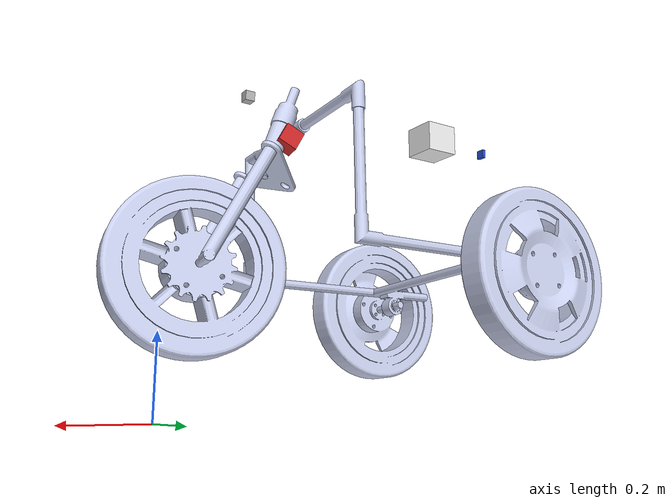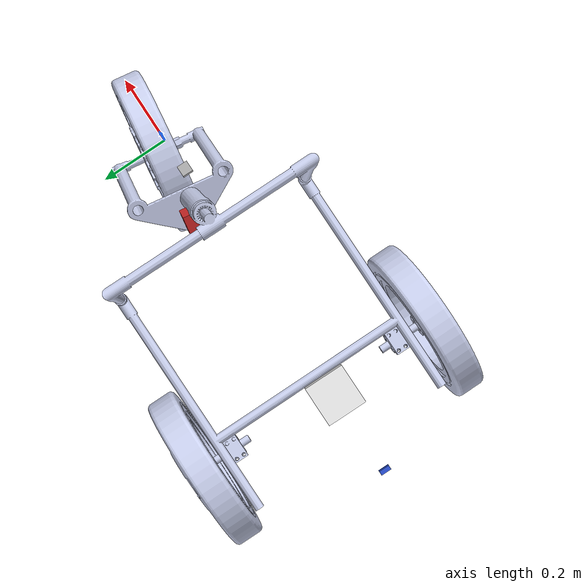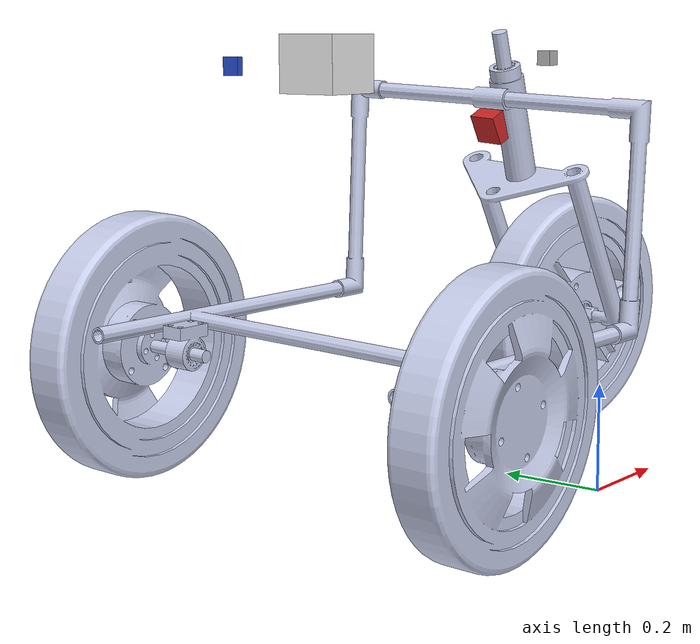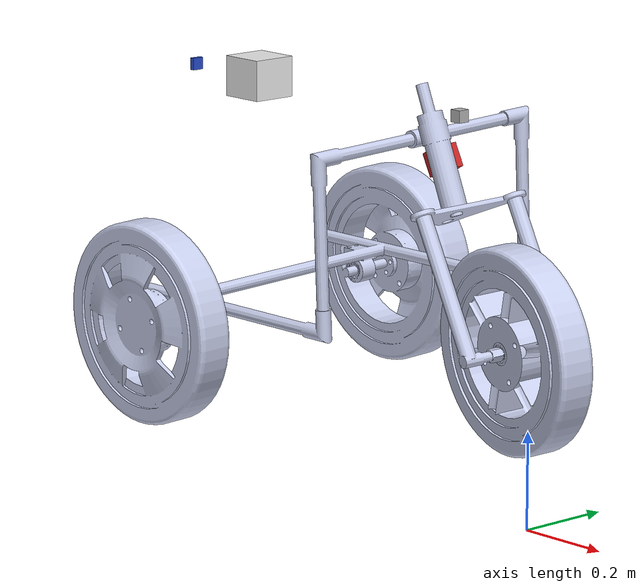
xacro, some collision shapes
<?xml version="1.0"?>

<robot
  name="chasisss"
  xmlns:sensor="http://playerstage.sourceforge.net/gazebo/xmlschema/#sensor"
xmlns:controller="http://playerstage.sourceforge.net/gazebo/xmlschema/#controller"
xmlns:interface="http://playerstage.sourceforge.net/gazebo/xmlschema/#interface"
xmlns:xacro="http://ros.org/wiki/xacro"
>

<xacro:include filename="$(find eklavya5_description)/sensors/imu.urdf.xacro" />
<xacro:include filename="$(find eklavya5_description)/sensors/gps.urdf.xacro" />
 <property name="M_PI" value="3.1415926535897931" />

  <link
    name = "base_link">
  </link>
  <link
    name="Chassis">
    <inertial>
      <origin
        xyz="0.51815 0.2035 0.46592"
        rpy="0 0 0" />
      <mass
        value="1.60779" />
      <inertia
        ixx="0.100657"
        ixy="0.000429"
        ixz="-0.012951"
        iyy="0.062637"
        iyz="-0.000032"
        izz="0.126211" />
    </inertial>
    <visual>
      <origin
        xyz="0 0 0"
        rpy="0 0 0" />
      <geometry>
        <mesh
          filename="package://eklavya5_description/meshes/Chassis.STL" />
      </geometry>
      <material
        name="">
        <color
          rgba="0.79216 0.81961 0.93333 1" />
      </material>
    </visual>
    <collision>
      <origin
        xyz="0 0 0"
        rpy="0 0 0" />
      <geometry>
        <mesh
          filename="package://eklavya5_description/meshes/Chassis.STL" />
      </geometry>
    </collision>
  </link>
  <joint
    name="base_link-Chassis"
    type="fixed">
    <origin
      xyz="0 0 0"
      rpy="0 -1.25 -1.57" />
    <parent
      link="base_link" />
    <child
      link="Chassis" />
  </joint>
  <link
    name="Steering">
    <inertial>
      <origin
        xyz="0.074275 -0.0014324 0.24555"
        rpy="0 0 0" />
      <mass
        value="5.15679" />
      <inertia
        ixx="0.030405"
        ixy="0.00"
        ixz="-0.014212"
        iyy="0.037062"
        iyz="0.00"
        izz="0.015136" />
    </inertial>
    <visual>
      <origin
        xyz="0 0 0"
        rpy="0 0 0" />
      <geometry>
        <mesh
          filename="package://eklavya5_description/meshes/Steering.STL" />
      </geometry>
      <material
        name="">
        <color
          rgba="0.79216 0.81961 0.93333 1" />
      </material>
    </visual>
    <collision>
      <origin
        xyz="0 0 0"
        rpy="0 0 0" />
      <geometry>
        <mesh
          filename="package://eklavya5_description/meshes/Steering.STL" />
      </geometry>
    </collision>
  </link>
  <joint
    name="Chassis-Steering"
    type="revolute">
    <limit lower="${-M_PI/2.0}" upper="${M_PI/2.0}" effort="50000" velocity="10000"/>
    <origin
      xyz="0.20345 -0.10209 0.11102"
      rpy="1.2673 0 1.0548" />
    <parent
      link="Chassis" />
    <child
      link="Steering" />
    <axis
      xyz="0 0 -1" />

  </joint>
  <link
    name="Front Wheel">
    <inertial>
      <origin
        xyz="8.9869E-09 -1.0254E-08 -0.037497"
        rpy="0 0 0" />
      <mass
        value="7.11231" />
      <inertia
        ixx="0.084989"
        ixy="0.00"
        ixz="0.00"
        iyy="0.163706"
        iyz="0.00"
        izz="0.084989" />
    </inertial>
    <visual>
      <origin
        xyz="0 0 0"
        rpy="0 0 0" />
      <geometry>
        <mesh
          filename="package://eklavya5_description/meshes/Front Wheel.STL" />
      </geometry>
      <material
        name="">
        <color
          rgba="0.79216 0.81961 0.93333 1" />
      </material>
    </visual>
    <collision>
      <origin
        xyz="0 0 0"
        rpy="0 0 0" />
      <geometry>
        <mesh
          filename="package://eklavya5_description/meshes/Front Wheel.STL" />
      </geometry>
      <surface>
        <friction>
          <ode>
            <mu>0.5</mu>
            <mu2>0.25</mu2>
          </ode>
        </friction>
        <contact>
          <ode/>
        </contact>
     </surface>
    </collision>
  </link>
  <joint
    name="Steerring Wheel"
    type="continuous">
    <origin
      xyz="0.086603 0.038 0.087837"
      rpy="1.5708 0 3.1416" />
    <parent
      link="Steering" />
    <child
      link="Front Wheel" />
    <axis
      xyz="0 0 -1" />

  </joint>
  <link
    name="Left Wheel">
    <inertial>
      <origin
        xyz="4.0523E-15 0.057678 2.2204E-16"
        rpy="0 0 0" />
      <mass
        value="6.50284" />
      <inertia
        ixx="0.084208"
        ixy="0.00"
        ixz="0.00"
        iyy="0.161025"
        iyz="0.00"
        izz="0.084208" />
    </inertial>
    <visual>
      <origin
        xyz="0 0 0"
        rpy="0 0 0" />
      <geometry>
        <mesh
          filename="package://eklavya5_description/meshes/Left Wheel.STL" />
      </geometry>
      <material
        name="">
        <color
          rgba="0.79216 0.81961 0.93333 1" />
      </material>
    </visual>
    <collision>
      <origin
        xyz="0 0 0"
        rpy="0 0 0" />
      <geometry>
        <mesh
          filename="package://eklavya5_description/meshes/Left Wheel.STL" />
      </geometry>
      <surface>
        <friction>
          <ode>
            <mu>0.5</mu>
            <mu2>0.25</mu2>
          </ode>
        </friction>
        <contact>
          <ode/>
        </contact>
     </surface>

    </collision>
  </link>
  <joint
    name="LW-Chassis"
    type="continuous">
    <origin
      xyz="0.23345 -0.80043 0.41447"
      rpy="1.4533 -0.25456 0.43831" />
    <parent
      link="Chassis" />
    <child
      link="Left Wheel" />
    <axis
      xyz="0 -1 0" />

  </joint>
  <link
    name="Right Wheel">
    <inertial>
      <origin
        xyz="-1.0103E-14 1.8874E-15 0.073368"
        rpy="0 0 0" />
      <mass
        value="6.50284" />
      <inertia
        ixx="0.084208"
        ixy="0.00"
        ixz="0.00"
        iyy="0.161025"
        iyz="0.00"
        izz="0.084208" />
    </inertial>
    <visual>
      <origin
        xyz="0 0 0"
        rpy="0 0 0" />
      <geometry>
        <mesh
          filename="package://eklavya5_description/meshes/Right Wheel.STL" />
      </geometry>
      <material
        name="">
        <color
          rgba="0.79216 0.81961 0.93333 1" />
      </material>
    </visual>
    <collision>
      <origin
        xyz="0 0 0"
        rpy="0 0 0" />
      <geometry>
        <mesh
          filename="package://eklavya5_description/meshes/Right Wheel.STL" />
      </geometry>
      <surface>
        <friction>
          <ode>
            <mu>0.5</mu>
            <mu2>0.25</mu2>
          </ode>
        </friction>
        <contact>
          <ode/>
        </contact>
     </surface>
    </collision>
  </link>
  <joint
    name="RW-Chassis"
    type="continuous">
    <origin
      xyz="0.384 -0.80043 -0.10941"
      rpy="-3.0808 -0.27332 -0.22183" />
    <parent
      link="Chassis" />
    <child
      link="Right Wheel" />
    <axis
      xyz="0 0 1" />

  </joint>

  <joint name="camera_joint" type="fixed">
    <axis xyz="0 1 0" />
    <origin xyz="0.05 0 0.5" rpy="0 0 0"/>
    <parent link="Steering"/>
    <child link="camera_link"/>
  </joint>

  <!-- Camera -->
  <link name="camera_link">
    <collision>
      <origin xyz="0 0 0" rpy="0 0 0"/>
      <geometry>
    <box size="0.05 0.05 0.05"/>
      </geometry>
    </collision>

    <visual>
      <origin xyz="0 0 0" rpy="0 0 0"/>
      <geometry>
<box size="0.05 0.05 0.05"/>
      </geometry>
      <material name="red"/>
    </visual>

    <inertial>
      <mass value="1e-5" />
      <origin xyz="0 0 0" rpy="0 0 0"/>
      <inertia ixx="1e-6" ixy="0" ixz="0" iyy="1e-6" iyz="0" izz="1e-6" />
    </inertial>
  </link>

  <gazebo reference="camera_link">
    <sensor type="camera" name="camera1">
      <update_rate>24.0</update_rate>
      <camera name="head">
        <horizontal_fov>1.23</horizontal_fov>
        <image>
          <width>640</width>
          <height>480</height>
          <format>R8G8B8</format>
        </image>
        <clip>
          <near>0.02</near>
          <far>300</far>
        </clip>
        <noise>
          <type>gaussian</type>
          <!-- Noise is sampled independently per pixel on each frame.
               That pixel's noise value is added to each of its color
               channels, which at that point lie in the range [0,1]. -->
          <mean>0.0</mean>
          <stddev>0.007</stddev>
        </noise>
      </camera>
      <plugin name="camera_controller" filename="libgazebo_ros_camera.so">
        <alwaysOn>true</alwaysOn>
        <updateRate>0.0</updateRate>
        <cameraName>eklavya</cameraName>
        <imageTopicName>image_raw</imageTopicName>
        <cameraInfoTopicName>camera_info</cameraInfoTopicName>
        <frameName>camera_link</frameName>
        <hackBaseline>0.07</hackBaseline>
        <distortionK1>0.0</distortionK1>
        <distortionK2>0.0</distortionK2>
        <distortionK3>0.0</distortionK3>
        <distortionT1>0.0</distortionT1>
        <distortionT2>0.0</distortionT2>
      </plugin>
    </sensor>
  </gazebo>

<!-- Hokuyo Laser-->
<joint name="hokuyo_joint" type="fixed">
    <axis xyz="0 1 0" />
    <origin xyz="-0.2 0 0.8" rpy="0 0 0"/>
    <parent link="base_link"/>
    <child link="hokuyo_link"/>
  </joint>

  <link name="hokuyo_link">
    <collision>
      <origin xyz="0 0 0" rpy="0 0 0"/>
      <geometry>
    <box size="0.025 0.025 0.025"/>
      </geometry>
    </collision>

    <visual>
      <origin xyz="0 0 0" rpy="0 0 0"/>
      <geometry>
        <mesh filename="package://eklavya5_description/meshes/hokuyo.dae"/>
      </geometry>
    </visual>

    <inertial>
      <mass value="1e-5" />
      <origin xyz="0 0 0" rpy="0 0 0"/>
      <inertia ixx="1e-6" ixy="0" ixz="0" iyy="1e-6" iyz="0" izz="1e-6" />
    </inertial>
  </link>
  <!-- hokuyo -->
  <gazebo reference="hokuyo_link">
    <sensor type="ray" name="head_hokuyo_sensor">
      <pose>0 0 0 0 0 0</pose>
      <visualize>true</visualize>
      <update_rate>40</update_rate>
      <ray>
        <scan>
          <horizontal>
            <samples>720</samples>
            <resolution>1</resolution>
            <min_angle>-1.570796</min_angle>
            <max_angle>1.570796</max_angle>
          </horizontal>
        </scan>
        <range>
          <min>0.1</min>
          <max>40.0</max>
          <resolution>0.01</resolution>
        </range>
        <noise>
          <type>gaussian</type>
          <mean>0.0</mean>
          <stddev>0.01</stddev>
        </noise>
      </ray>
      <plugin name="gazebo_ros_head_hokuyo_controller" filename="libgazebo_ros_laser.so">
        <topicName>eklavya/laser/scan</topicName>
        <frameName>hokuyo_link</frameName>
      </plugin>
    </sensor>
  </gazebo>

<!-- IMU-->

    <sensor_imu parent="base_link" name="imu" colour="Blue" imu_px="-1" imu_py="0.0" imu_pz="0.8" imu_or="0.0" imu_op="${-M_PI/2.0}" imu_oy="0.0">

    </sensor_imu>

    <gazebo reference="imu_link">
        <material>Gazebo/Blue</material>
    </gazebo>

    <!-- GPS antenna/module -->
    <sensor_gps parent="base_link" name="gps"
          colour="White"

          gps_px="-0.8"
          gps_py="0"
          gps_pz="0.8"
          gps_or="0.0"
          gps_op="0.0"
          gps_oy="${M_PI}"
          dimX="0.16" dimY="0.16" dimZ="0.14"
          >

    </sensor_gps>
    <gazebo reference="gps_link">
        <material>Gazebo/White</material>
    </gazebo>
    <!-- Controls plugin-->
  <gazebo>
    <plugin filename="libeklavya_gazebo_plugins.so" name="eklavya_diff_controller">
-      <alwaysOn>true</alwaysOn>
-      <updateRate>100.0</updateRate>
-      <backLeftJoint>joint_back_left_wheel</backLeftJoint>
-      <backRightJoint>joint_back_right_wheel</backRightJoint>
-      <frontLeftJoint>joint_front_left_wheel</frontLeftJoint>
-
-      <wheelSeparation>0.5709</wheelSeparation>
-      <wheelDiameter>0.3555</wheelDiameter>
-      <torque>35</torque>
-    </plugin>
  </gazebo>
-

</robot>

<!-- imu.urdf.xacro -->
<robot name="sensor_imu" xmlns:xacro="http://ros.org/wiki/xacro">

  <xacro:include filename="$(find eklavya5_description)/sensors/imusensor_gazebo.urdf.xacro"/>

  <xacro:macro name="sensor_imu" params="parent name colour imu_px imu_py imu_pz imu_or imu_op imu_oy">
    <link name="${name}_link">
      <inertial>
        <mass value="0.01"/>
        <origin xyz="0 0 0" rpy="0 0 0" />
        <inertia ixx="0.000001" ixy="0" ixz="0" iyy="0.000001" iyz="0" izz="0.000001"/>
      </inertial>
      <visual>
        <origin rpy="0 0 0" xyz="0 0 0"/>
        <geometry>
          <box size="0.025 0.025 0.01"/>
        </geometry>
	<material name="${colour}" />
      </visual>
    </link>
    <joint name="${name}_joint" type="fixed">
      <parent link="${parent}"/>
      <child link="${name}_link"/>
      <origin xyz="${imu_px} ${imu_py} ${imu_pz}" rpy="${imu_or} ${imu_op} ${imu_oy}"/>
    </joint>

    <!-- IMU sensor for simulation -->
    <xacro:eklavya_sim_imusensor name="${name}" />
  </xacro:macro>

</robot>

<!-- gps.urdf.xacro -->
<robot name="sensor_gps" xmlns:xacro="http://ros.org/wiki/xacro">

  <xacro:include filename="$(find eklavya5_description)/sensors/hector_gps_gazebo.urdf.xacro"/>

  <xacro:macro name="sensor_gps" params="parent name colour gps_px gps_py gps_pz gps_or gps_op gps_oy dimX dimY dimZ">
    <link name="${name}_link">
      <inertial>
        <mass value="0.10"/>
        <origin xyz="0 0 0"/>
        <inertia ixx="0.000001" ixy="0" ixz="0" iyy="0.000001" iyz="0" izz="0.000001"/>
      </inertial>
      <visual>
	<origin xyz="0 0 0" rpy="0 0 0" />
	<geometry>
          <mesh filename="package://eklavya5_description/meshes/GPSAntennaScaledDown.dae" />
	</geometry>
	<material name="${colour}" />
      </visual>
      <collision>
        <origin rpy="0 0 0" xyz="0 0 0"/>
        <geometry>
          <box size="${dimX * 0.6} ${dimY * 0.6} ${dimZ * 0.6}"/>
        </geometry>
      </collision>
    </link>
    <joint name="${name}_joint" type="fixed">
      <parent link="${parent}"/>
      <child link="${name}_link"/>
      <origin xyz="${gps_px} ${gps_py} ${gps_pz}" rpy="${gps_or} ${gps_op} ${gps_oy}"/>
    </joint>

  <!-- gps sensor for simulation -->
  <xacro:eklavya_sim_gpssensor
      name="${name}" />
  </xacro:macro>

</robot>
